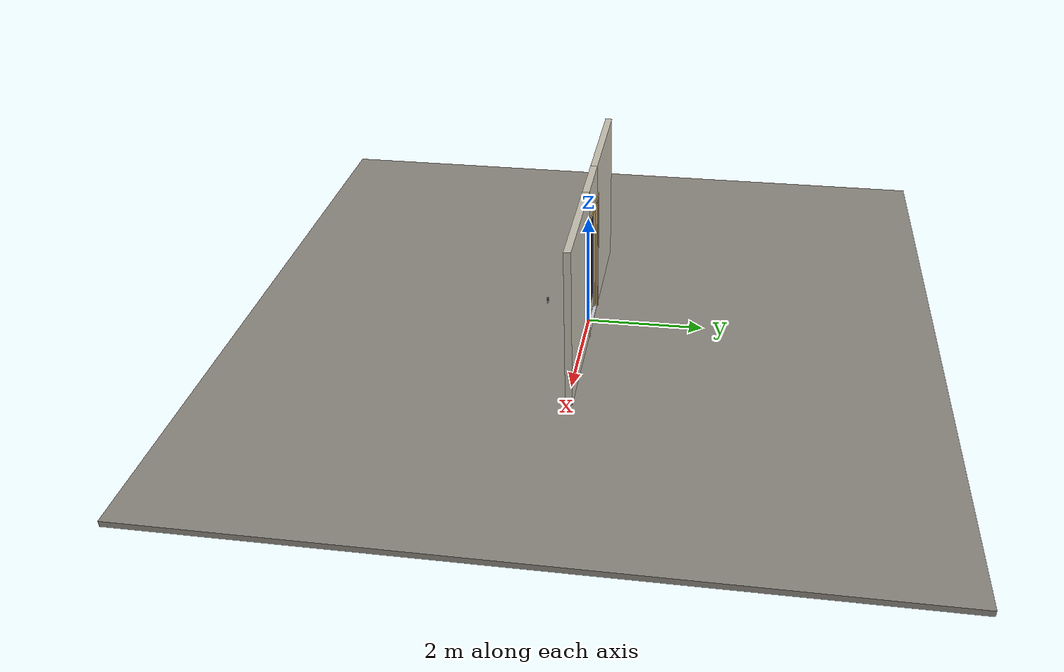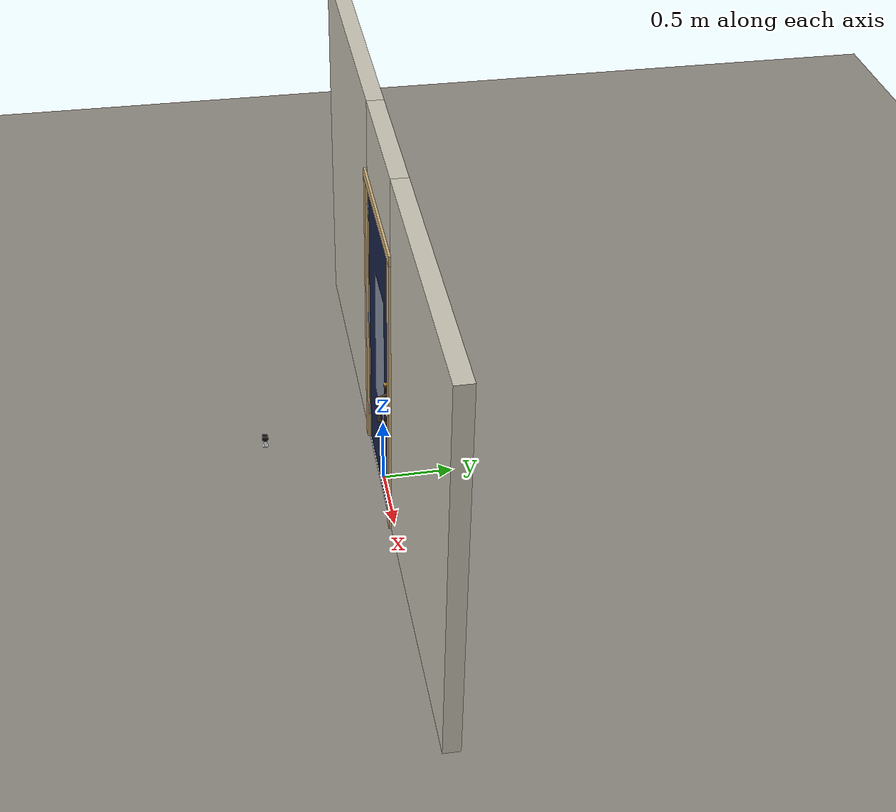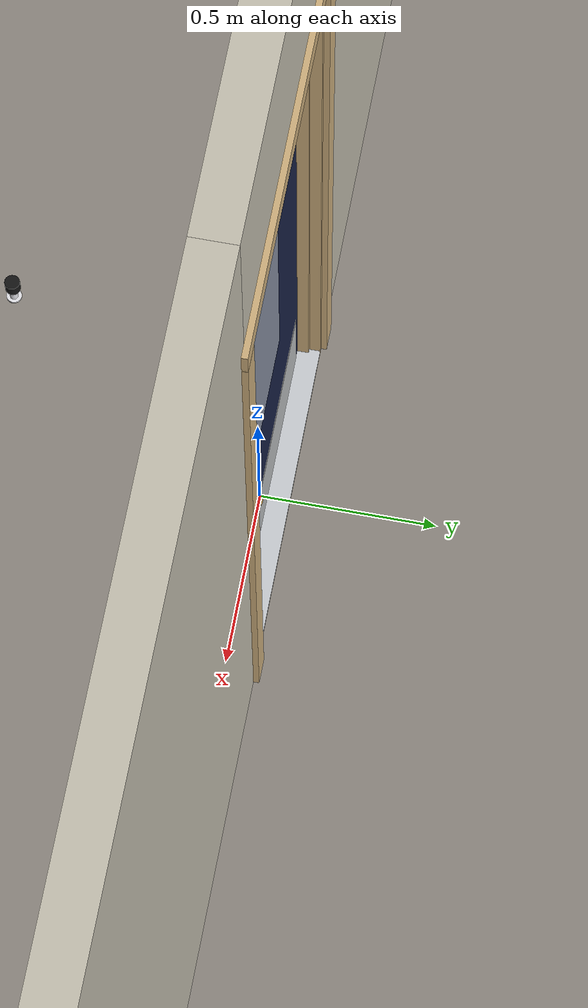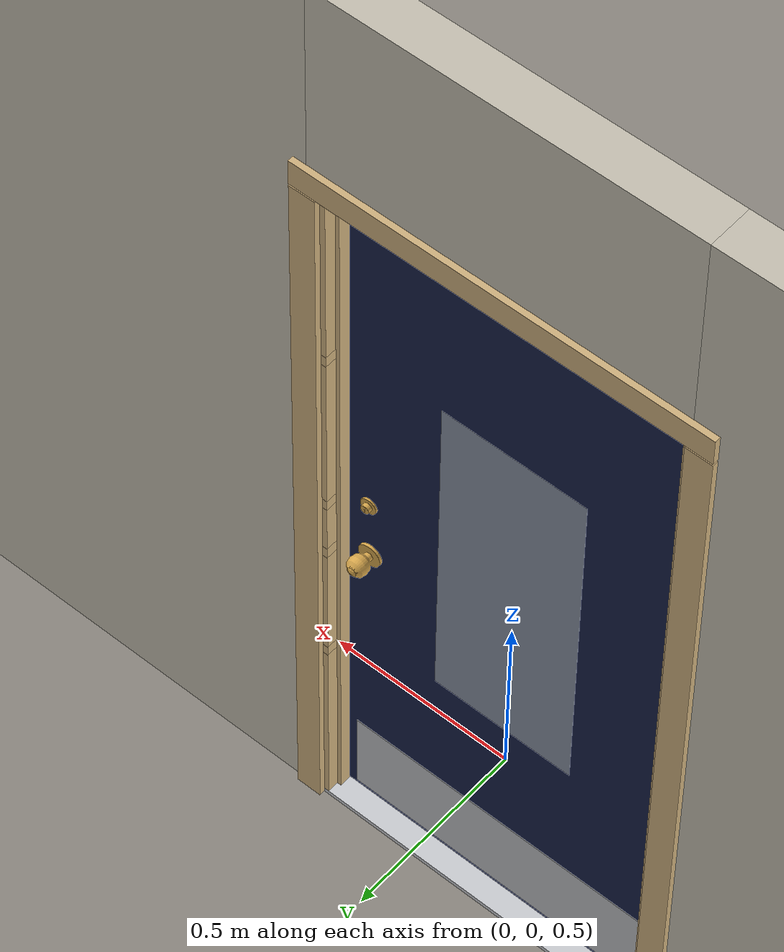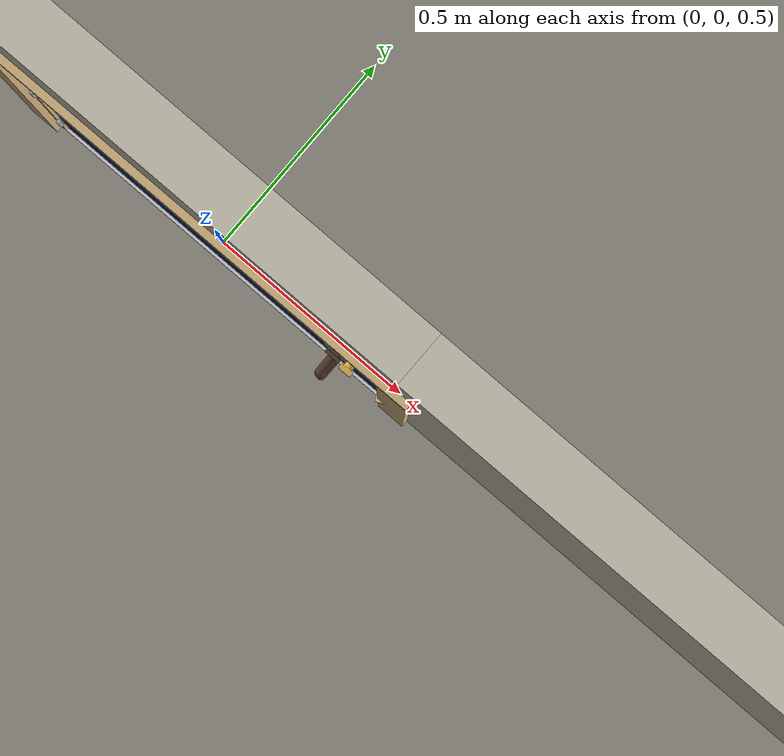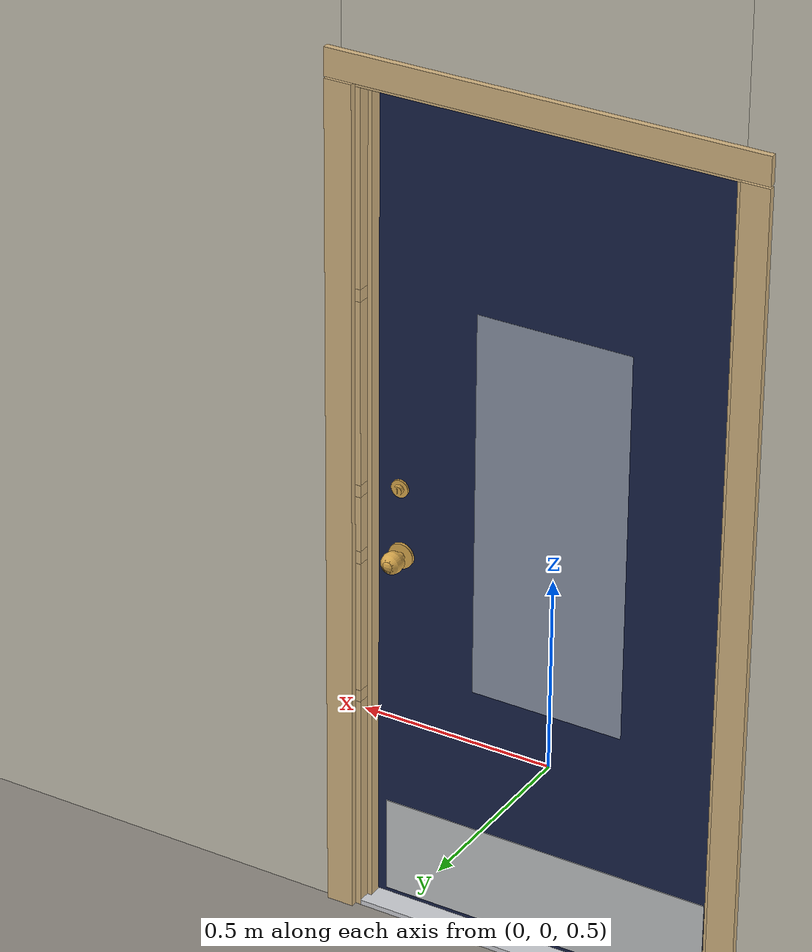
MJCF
<?xml version="1.0" ?>
<mujoco model="db0610_swing_single_full">
  <compiler angle="radian" meshdir="../../hardware" texturedir="../../textures" autolimits="true" inertiafromgeom="false"/>
  <option timestep="0.002" integrator="implicitfast" cone="elliptic" impratio="10" noslip_iterations="3">
    <flag multiccd="enable"/>
  </option>
  <size memory="16M"/>
  <default>
    <geom condim="4" solref="0.005 1" solimp="0.95 0.99 0.001"/>
    <joint solreflimit="0.005 1" solimplimit="0.95 0.99 0.001"/>
    <tendon solreflimit="0.005 1"/>
    <equality solref="0.002 1"/>
  </default>
  <visual>
    <headlight ambient="0.4 0.4 0.4" diffuse="0.7 0.7 0.7" specular="0.2 0.2 0.2"/>
    <quality shadowsize="4096"/>
    <map znear="0.01" zfar="60"/>
  </visual>
  <asset>
    <mesh name="cyl_face_e9e5036966" file="cyl_face_e9e5036966.obj"/>
    <mesh name="handleset_beb5526ad2" file="handleset_beb5526ad2.obj"/>
    <mesh name="hinge_2af0f4d6ca" file="hinge_2af0f4d6ca.obj"/>
    <mesh name="hinge_jamb_c0c0a62ada" file="hinge_jamb_c0c0a62ada.obj"/>
    <mesh name="knob_d1888f6f03" file="knob_d1888f6f03.obj"/>
    <mesh name="thumbturn_eb5c9899a3" file="thumbturn_eb5c9899a3.obj"/>
    <material name="mat_floor" rgba="0.55 0.53 0.5 1" specular="0.2" shininess="0.15" reflectance="0"/>
    <material name="mat_wall" rgba="0.78 0.76 0.7 1" specular="0.2" shininess="0.1" reflectance="0"/>
    <material name="mat_leaf" rgba="0.09 0.13 0.28 1" specular="0.2" shininess="0.34" reflectance="0"/>
    <material name="mat_glass" rgba="0.9 0.93 0.95 0.6" specular="0.2" shininess="0.5" reflectance="0.1"/>
    <material name="mat_hinge" rgba="0.65 0.66 0.68 1" specular="0.74" shininess="0.5" reflectance="0.36"/>
    <material name="mat_op_bronze" rgba="0.3 0.22 0.15 1" specular="0.74" shininess="0.5" reflectance="0.36"/>
    <material name="mat_op_brass" rgba="0.85 0.66 0.3 1" specular="0.8" shininess="0.75" reflectance="0.4"/>
    <material name="mat_trim" rgba="0.85 0.66 0.3 1" specular="0.8" shininess="0.75" reflectance="0.4"/>
    <material name="mat_bolt" rgba="0.85 0.66 0.3 1" specular="0.8" shininess="0.75" reflectance="0.4"/>
    <material name="mat_deadbolt" rgba="0.85 0.66 0.3 1" specular="0.8" shininess="0.75" reflectance="0.4"/>
    <material name="mat_frame" rgba="0.82 0.7 0.5 1" specular="0.2" shininess="0.45" reflectance="0"/>
    <material name="mat_threshold" rgba="0.8 0.81 0.83 1" specular="0.8" shininess="0.6" reflectance="0.4"/>
    <material name="mat_kick" rgba="0.75 0.76 0.77 1" specular="0.8" shininess="0.65" reflectance="0.4"/>
    <material name="mat_bumper_stop" rgba="0.08 0.08 0.08 1" specular="0.2" shininess="0.1" reflectance="0"/>
    <material name="mat_stop_base" rgba="0.9 0.9 0.92 1" specular="0.8" shininess="0.9" reflectance="0.4"/>
    <texture name="skybox" type="skybox" builtin="gradient" rgb1="0.6 0.7 0.85" rgb2="0.9 0.92 0.95" width="256" height="256"/>
  </asset>
  <worldbody>
    <light name="sun" pos="1.5 -2.5 4" dir="-0.3 0.5 -0.8" directional="true" diffuse="0.8 0.8 0.8" specular="0.3 0.3 0.3" castshadow="true"/>
    <light name="fill" pos="-1.5 2.5 3" dir="0.3 -0.5 -0.7" directional="true" diffuse="0.35 0.35 0.4" castshadow="false"/>
    <camera name="robot_view" pos="0 -2.609312 1.812087" xyaxes="1 0 0 0 0.26963 0.962964" fovy="52"/>
    <camera name="far_view" pos="0 2.666313 1.812087" xyaxes="-1 0 0 0 -0.26963 0.962964" fovy="52"/>
    <camera name="iso" pos="2.004737 -2.187262 2.234138" xyaxes="0.741536 0.670913 0 -0.242917 0.268487 0.932151" fovy="46"/>
    <camera name="detail_handle" pos="0.5315 -0.882 1.185" xyaxes="0.97561 0.219512 0 -0.070934 0.315262 0.94635" fovy="38"/>
    <geom name="floor" type="box" size="6 6 0.05" pos="0 0 -0.05" material="mat_floor" group="0" contype="1" conaffinity="1" friction="0.8 0.005 0.0001" density="2400"/>
    <geom name="wall_left" type="box" size="1.01025 0.0575 1.3735" pos="-1.48975 0.0285 1.3735" material="mat_wall" group="0" contype="1" conaffinity="1" friction="0.6 0.005 0.0001" density="800"/>
    <geom name="wall_right" type="box" size="0.99525 0.0575 1.3735" pos="1.50475 0.0285 1.3735" material="mat_wall" group="0" contype="1" conaffinity="1" friction="0.6 0.005 0.0001" density="800"/>
    <geom name="wall_header" type="box" size="0.4945 0.0575 0.2755" pos="0.015 0.0285 2.4715" material="mat_wall" group="0" contype="1" conaffinity="1" friction="0.6 0.005 0.0001" density="800"/>
    <geom name="hinge_0_jamb" type="mesh" mesh="hinge_jamb_c0c0a62ada" pos="-0.4575 -0.029 0.267" material="mat_hinge" group="1" contype="0" conaffinity="0" density="7850"/>
    <geom name="hinge_1_jamb" type="mesh" mesh="hinge_jamb_c0c0a62ada" pos="-0.4575 -0.029 1.08" material="mat_hinge" group="1" contype="0" conaffinity="0" density="7850"/>
    <geom name="hinge_2_jamb" type="mesh" mesh="hinge_jamb_c0c0a62ada" pos="-0.4575 -0.029 1.963" material="mat_hinge" group="1" contype="0" conaffinity="0" density="7850"/>
    <geom name="leaf_deadbolt_strike_b" type="box" size="0.0155 0.003 0.0005" pos="0.46 0 1.1215" quat="-0.5 -0.5 0.5 0.5" material="mat_deadbolt" group="1" contype="0" conaffinity="0" density="7800"/>
    <geom name="leaf_deadbolt_strike_l" type="box" size="0.003 0.0155 0.0005" pos="0.46 0.0125 1.14" quat="-0.5 -0.5 0.5 0.5" material="mat_deadbolt" group="1" contype="0" conaffinity="0" density="7800"/>
    <geom name="leaf_deadbolt_strike_t" type="box" size="0.0155 0.003 0.0005" pos="0.46 0 1.1585" quat="-0.5 -0.5 0.5 0.5" material="mat_deadbolt" group="1" contype="0" conaffinity="0" density="7800"/>
    <geom name="leaf_deadbolt_strike_r" type="box" size="0.003 0.0155 0.0005" pos="0.46 -0.0125 1.14" quat="-0.5 -0.5 0.5 0.5" material="mat_deadbolt" group="1" contype="0" conaffinity="0" density="7800"/>
    <geom name="leaf_multipoint_upper_strike_b" type="box" size="0.0155 0.003 0.0005" pos="0.46 0 1.6215" quat="-0.5 -0.5 0.5 0.5" material="mat_deadbolt" group="1" contype="0" conaffinity="0" density="7800"/>
    <geom name="leaf_multipoint_upper_strike_l" type="box" size="0.003 0.0155 0.0005" pos="0.46 0.0125 1.64" quat="-0.5 -0.5 0.5 0.5" material="mat_deadbolt" group="1" contype="0" conaffinity="0" density="7800"/>
    <geom name="leaf_multipoint_upper_strike_t" type="box" size="0.0155 0.003 0.0005" pos="0.46 0 1.6585" quat="-0.5 -0.5 0.5 0.5" material="mat_deadbolt" group="1" contype="0" conaffinity="0" density="7800"/>
    <geom name="leaf_multipoint_upper_strike_r" type="box" size="0.003 0.0155 0.0005" pos="0.46 -0.0125 1.64" quat="-0.5 -0.5 0.5 0.5" material="mat_deadbolt" group="1" contype="0" conaffinity="0" density="7800"/>
    <geom name="leaf_multipoint_lower_strike_b" type="box" size="0.0155 0.003 0.0005" pos="0.46 0 0.5715" quat="-0.5 -0.5 0.5 0.5" material="mat_deadbolt" group="1" contype="0" conaffinity="0" density="7800"/>
    <geom name="leaf_multipoint_lower_strike_l" type="box" size="0.003 0.0155 0.0005" pos="0.46 0.0125 0.59" quat="-0.5 -0.5 0.5 0.5" material="mat_deadbolt" group="1" contype="0" conaffinity="0" density="7800"/>
    <geom name="leaf_multipoint_lower_strike_t" type="box" size="0.0155 0.003 0.0005" pos="0.46 0 0.6085" quat="-0.5 -0.5 0.5 0.5" material="mat_deadbolt" group="1" contype="0" conaffinity="0" density="7800"/>
    <geom name="leaf_multipoint_lower_strike_r" type="box" size="0.003 0.0155 0.0005" pos="0.46 -0.0125 0.59" quat="-0.5 -0.5 0.5 0.5" material="mat_deadbolt" group="1" contype="0" conaffinity="0" density="7800"/>
    <geom name="jamb_hinge" type="box" size="0.0095 0.0575 1.0735" pos="-0.47 0.0285 1.0735" material="mat_frame" group="0" contype="1" conaffinity="1" friction="0.6 0.005 0.0001" density="400"/>
    <geom name="strike_590_wall_n" type="box" size="0.0245 0.03825 0.0155" pos="0.485 0.04775 0.59" material="mat_frame" group="0" contype="1" conaffinity="1" friction="0.6 0.005 0.0001" density="400"/>
    <geom name="strike_590_wall_p" type="box" size="0.0245 0.00975 0.0155" pos="0.485 -0.01925 0.59" material="mat_frame" group="0" contype="1" conaffinity="1" friction="0.6 0.005 0.0001" density="400"/>
    <geom name="strike_590_back" type="box" size="0.0125 0.0095 0.0155" pos="0.497 0 0.59" material="mat_frame" group="0" contype="1" conaffinity="1" friction="0.6 0.005 0.0001" density="400"/>
    <geom name="strike_965_wall_n" type="box" size="0.0245 0.039075 0.0167" pos="0.485 0.046925 0.965" material="mat_frame" group="0" contype="1" conaffinity="1" friction="0.6 0.005 0.0001" density="400"/>
    <geom name="strike_965_wall_p" type="box" size="0.0245 0.008 0.0167" pos="0.485 -0.01585 0.965" material="mat_frame" group="0" contype="1" conaffinity="1" friction="0.6 0.005 0.0001" density="400"/>
    <geom name="strike_965_ramp" type="box" size="0.0245 0.01649 0.0167" pos="0.489636 -0.028673 0.965" quat="0.977148 0 0 0.212558" material="mat_frame" group="0" contype="1" conaffinity="1" friction="0.12 0.005 0.0001" density="400"/>
    <geom name="strike_965_back" type="box" size="0.01615 0.00785 0.0167" pos="0.49335 0 0.965" material="mat_frame" group="0" contype="1" conaffinity="1" friction="0.6 0.005 0.0001" density="400"/>
    <geom name="strike_1140_wall_n" type="box" size="0.0245 0.03825 0.0155" pos="0.485 0.04775 1.14" material="mat_frame" group="0" contype="1" conaffinity="1" friction="0.6 0.005 0.0001" density="400"/>
    <geom name="strike_1140_wall_p" type="box" size="0.0245 0.00975 0.0155" pos="0.485 -0.01925 1.14" material="mat_frame" group="0" contype="1" conaffinity="1" friction="0.6 0.005 0.0001" density="400"/>
    <geom name="strike_1140_back" type="box" size="0.0125 0.0095 0.0155" pos="0.497 0 1.14" material="mat_frame" group="0" contype="1" conaffinity="1" friction="0.6 0.005 0.0001" density="400"/>
    <geom name="strike_1640_wall_n" type="box" size="0.0245 0.03825 0.0155" pos="0.485 0.04775 1.64" material="mat_frame" group="0" contype="1" conaffinity="1" friction="0.6 0.005 0.0001" density="400"/>
    <geom name="strike_1640_wall_p" type="box" size="0.0245 0.00975 0.0155" pos="0.485 -0.01925 1.64" material="mat_frame" group="0" contype="1" conaffinity="1" friction="0.6 0.005 0.0001" density="400"/>
    <geom name="strike_1640_back" type="box" size="0.0125 0.0095 0.0155" pos="0.497 0 1.64" material="mat_frame" group="0" contype="1" conaffinity="1" friction="0.6 0.005 0.0001" density="400"/>
    <geom name="jamb_strike_0" type="box" size="0.0245 0.0575 0.28725" pos="0.485 0.0285 0.28725" material="mat_frame" group="0" contype="1" conaffinity="1" friction="0.6 0.005 0.0001" density="400"/>
    <geom name="jamb_strike_1" type="box" size="0.0245 0.0575 0.1714" pos="0.485 0.0285 0.7769" material="mat_frame" group="0" contype="1" conaffinity="1" friction="0.6 0.005 0.0001" density="400"/>
    <geom name="jamb_strike_2" type="box" size="0.0245 0.0575 0.0714" pos="0.485 0.0285 1.0531" material="mat_frame" group="0" contype="1" conaffinity="1" friction="0.6 0.005 0.0001" density="400"/>
    <geom name="jamb_strike_3" type="box" size="0.0245 0.0575 0.2345" pos="0.485 0.0285 1.39" material="mat_frame" group="0" contype="1" conaffinity="1" friction="0.6 0.005 0.0001" density="400"/>
    <geom name="jamb_strike_4" type="box" size="0.0245 0.0575 0.24575" pos="0.485 0.0285 1.90125" material="mat_frame" group="0" contype="1" conaffinity="1" friction="0.6 0.005 0.0001" density="400"/>
    <geom name="jamb_head" type="box" size="0.4945 0.0575 0.0095" pos="0.015 0.0285 2.1565" material="mat_frame" group="0" contype="1" conaffinity="1" friction="0.6 0.005 0.0001" density="400"/>
    <geom name="head_stud" type="box" size="0.4945 0.0575 0.015" pos="0.015 0.0285 2.181" material="mat_wall" group="0" contype="1" conaffinity="1" friction="0.6 0.005 0.0001" density="500"/>
    <geom name="stop_hinge" type="box" size="0.0055 0.016 1.0735" pos="-0.455 0.0385 1.0735" material="mat_frame" group="0" contype="1" conaffinity="1" friction="0.6 0.005 0.0001" density="400"/>
    <geom name="stop_strike" type="box" size="0.0055 0.016 1.0735" pos="0.455 0.0385 1.0735" material="mat_frame" group="0" contype="1" conaffinity="1" friction="0.6 0.005 0.0001" density="400"/>
    <geom name="stop_head" type="box" size="0.4605 0.016 0.0055" pos="0 0.0385 2.1415" material="mat_frame" group="0" contype="1" conaffinity="1" friction="0.6 0.005 0.0001" density="400"/>
    <geom name="casing_l_n" type="box" size="0.035 0.008 1.083" pos="-0.5095 -0.037 1.0735" material="mat_frame" group="2" contype="0" conaffinity="0" density="400"/>
    <geom name="casing_r_n" type="box" size="0.035 0.008 1.083" pos="0.5095 -0.037 1.0735" material="mat_frame" group="2" contype="0" conaffinity="0" density="400"/>
    <geom name="casing_h_n" type="box" size="0.5445 0.008 0.035" pos="0 -0.037 2.196" material="mat_frame" group="2" contype="0" conaffinity="0" density="400"/>
    <geom name="casing_l_p" type="box" size="0.035 0.008 1.083" pos="-0.5095 0.094 1.0735" material="mat_frame" group="2" contype="0" conaffinity="0" density="400"/>
    <geom name="casing_r_p" type="box" size="0.035 0.008 1.083" pos="0.5095 0.094 1.0735" material="mat_frame" group="2" contype="0" conaffinity="0" density="400"/>
    <geom name="casing_h_p" type="box" size="0.5445 0.008 0.035" pos="0 0.094 2.196" material="mat_frame" group="2" contype="0" conaffinity="0" density="400"/>
    <geom name="threshold" type="box" size="0.4795 0.0575 0.0065" pos="0 0.0285 0.0065" material="mat_threshold" group="0" contype="1" conaffinity="1" friction="0.5 0.005 0.0001" density="2700"/>
    <geom name="door_stop_base" type="cylinder" size="0.022 0.003" pos="-0.4735 -0.8059 0.003" material="mat_stop_base" group="0" contype="1" conaffinity="1" friction="0.6 0.005 0.0001" density="7850"/>
    <geom name="door_stop_post" type="cylinder" size="0.012 0.0255" pos="-0.4735 -0.8059 0.0315" material="mat_stop_base" group="0" contype="1" conaffinity="1" friction="0.6 0.005 0.0001" density="7850"/>
    <geom name="door_stop_bumper" type="cylinder" size="0.022 0.02" pos="-0.4735 -0.8059 0.077" material="mat_bumper_stop" group="0" contype="1" conaffinity="1" friction="0.6 0.005 0.0001" density="1100"/>
    <site name="approach_point" pos="0 -1.5 0" quat="1 0 0 0" size="0.05" rgba="0.2 0.9 0.2 0.5" group="4"/>
    <site name="goal_point" pos="0 1.5 0" quat="1 0 0 0" size="0.05" rgba="0.2 0.9 0.2 0.5" group="4"/>
    <site name="door_plane_center" pos="0 0 1.0735" quat="1 0 0 0" size="0.02" rgba="0.2 0.9 0.2 0.5" group="4"/>
    <body name="leaf" pos="-0.4605 0 0">
      <inertial pos="0.472666 0.000282 0.979205" mass="32.373317" quat="0.498037 0.503664 0.498568 -0.499712" diaginertia="2.442576657 13.066637088 15.489293405"/>
      <joint name="leaf_hinge" type="hinge" axis="0 0 -1" pos="0.003 -0.029 0" limited="true" range="0 1.570796" damping="2.268966" frictionloss="1.602525" stiffness="6.6" springref="-0.409091" armature="0.02"/>
      <geom name="leaf_slab" type="box" size="0.457 0.022 1.063" pos="0.46 0 1.08" material="mat_leaf" group="0" contype="1" conaffinity="1" friction="0.4 0.005 0.0001" density="1"/>
      <geom name="leaf_glass_0" type="box" size="0.196053 0.0228 0.491106" pos="0.46 0 1.145906" material="mat_glass" group="1" contype="0" conaffinity="0" density="1"/>
      <geom name="hinge_0" type="mesh" mesh="hinge_2af0f4d6ca" pos="0.003 -0.029 0.267" material="mat_hinge" group="1" contype="0" conaffinity="0" density="7850"/>
      <geom name="hinge_1" type="mesh" mesh="hinge_2af0f4d6ca" pos="0.003 -0.029 1.08" material="mat_hinge" group="1" contype="0" conaffinity="0" density="7850"/>
      <geom name="hinge_2" type="mesh" mesh="hinge_2af0f4d6ca" pos="0.003 -0.029 1.963" material="mat_hinge" group="1" contype="0" conaffinity="0" density="7850"/>
      <geom name="leaf_handleset_n" type="mesh" mesh="handleset_beb5526ad2" pos="0.812 -0.022 0.905" quat="0.707107 0.707107 0 0" material="mat_op_bronze" group="1" contype="0" conaffinity="0" density="3000"/>
      <geom name="leaf_handleset_col_n" type="capsule" size="0.011 0.09" pos="0.812 -0.082 0.905" material="mat_op_bronze" group="3" contype="1" conaffinity="1" rgba="0.8 0.3 0.3 0.25" friction="0.7 0.01 0.0001" density="3000"/>
      <geom name="leaf_latch_bolt_faceplate" type="box" size="0.0006 0.01235 0.0267" pos="0.9164 0 0.965" material="mat_bolt" group="1" contype="0" conaffinity="0" density="8500"/>
      <geom name="leaf_deadbolt_faceplate" type="box" size="0.0006 0.014 0.0245" pos="0.9164 0 1.14" material="mat_deadbolt" group="1" contype="0" conaffinity="0" density="8500"/>
      <geom name="leaf_deadbolt_cylinder_face" type="mesh" mesh="cyl_face_e9e5036966" pos="0.852 0.022 1.14" quat="-0.707107 0.707107 0 0" material="mat_deadbolt" group="1" contype="0" conaffinity="0" density="7100"/>
      <geom name="leaf_multipoint_upper_faceplate" type="box" size="0.0006 0.014 0.0245" pos="0.9164 0 1.64" material="mat_deadbolt" group="1" contype="0" conaffinity="0" density="8500"/>
      <geom name="leaf_multipoint_lower_faceplate" type="box" size="0.0006 0.014 0.0245" pos="0.9164 0 0.59" material="mat_deadbolt" group="1" contype="0" conaffinity="0" density="8500"/>
      <geom name="leaf_multipoint_strip" type="box" size="0.0004 0.01 1.043" pos="0.9166 0 1.08" material="mat_deadbolt" group="1" contype="0" conaffinity="0" density="8500"/>
      <geom name="kick_plate_p" type="box" size="0.427 0.0008 0.125" pos="0.46 0.0228 0.152" material="mat_kick" group="2" contype="0" conaffinity="0" density="7900"/>
      <site name="leaf_handleset_grip_n" pos="0.812 -0.082 0.905" quat="1 0 0 0" size="0.012" rgba="0.2 0.9 0.2 0.5" group="4"/>
      <site name="leaf_edge_mid" pos="0.917 0 1.063" quat="1 0 0 0" size="0.02" rgba="0.2 0.9 0.2 0.5" group="4"/>
      <body name="leaf_handle" pos="0.847 0 0.965">
        <inertial pos="0 0.052948 0" mass="0.60261" quat="0.5 0.5 0.5 0.5" diaginertia="0.000156736 0.000451151 0.000451151"/>
        <joint name="leaf_handle_hinge" type="hinge" axis="0 -1 0" limited="true" range="0 0.87" damping="0.142525" frictionloss="0.038" stiffness="0.5" springref="-0.5" armature="0.01"/>
        <geom name="leaf_handle_spindle" type="cylinder" size="0.006 0.03" pos="0 0 0" quat="0.707107 -0.707107 0 0" material="mat_op_brass" group="1" contype="0" conaffinity="0" density="7850"/>
        <geom name="leaf_handle_knob_p" type="mesh" mesh="knob_d1888f6f03" pos="0 0.022 0" quat="-0.707107 0.707107 0 0" material="mat_op_brass" group="1" contype="0" conaffinity="0" density="3000"/>
        <geom name="leaf_handle_knob_col_p" type="sphere" size="0.0243" pos="0 0.0685 0" material="mat_op_brass" group="0" contype="1" conaffinity="1" friction="0.9 0.01 0.0001" density="3000"/>
        <geom name="leaf_handle_knob_neck_p" type="cylinder" size="0.011 0.012" pos="0 0.034 0" quat="0.707107 -0.707107 0 0" material="mat_op_brass" group="3" contype="1" conaffinity="1" rgba="0.8 0.3 0.3 0.25" friction="0.6 0.005 0.0001" density="3000"/>
        <site name="leaf_handle_grip_p" pos="0 0.0685 0" quat="1 0 0 0" size="0.012" rgba="0.2 0.9 0.2 0.5" group="4"/>
      </body>
      <body name="leaf_thumbpiece" pos="0.812 -0.04 1.077">
        <inertial pos="0 0.004 0" mass="0.05184" quat="-0.5 0.5 0.5 0.5" diaginertia="0.000006981 0.000007488 0.000009124"/>
        <joint name="leaf_thumbpiece_hinge" type="hinge" axis="-1 0 0" pos="0 0 0.02" limited="true" range="0 0.35" damping="0.219407" frictionloss="0.058" stiffness="1.2" springref="-0.416667" armature="0.01"/>
        <geom name="leaf_thumbpiece_geom" type="box" size="0.018 0.004 0.02" pos="0 0 0" material="mat_op_bronze" group="0" contype="1" conaffinity="1" friction="0.6 0.005 0.0001" density="3000"/>
        <geom name="leaf_thumbpiece_boss" type="box" size="0.01 0.012 0.006" pos="0 0.012 0" material="mat_op_bronze" group="1" contype="0" conaffinity="0" density="3000"/>
        <site name="leaf_thumb_push" pos="0 -0.005 0.01" quat="1 0 0 0" size="0.01" rgba="0.2 0.9 0.2 0.5" group="4"/>
      </body>
      <body name="leaf_latch_bolt" pos="0.917 0 0.965">
        <inertial pos="-0.00865 0 0" mass="0.041419" quat="0.92388 -0.382683 0 0" diaginertia="0.000000798 0.000005598 0.000005598"/>
        <joint name="leaf_latch_bolt_slide" type="slide" axis="-1 0 0" limited="true" range="0 0.0127" damping="2" frictionloss="0.3" stiffness="300" springref="-0.008333" armature="0.1"/>
        <geom name="leaf_latch_bolt_capsule" type="capsule" size="0.00635 0.015" pos="-0.00865 0 0" quat="0.707107 0 0.707107 0" material="mat_bolt" group="0" contype="1" conaffinity="1" friction="0.2 0.005 0.0001" density="8500"/>
      </body>
      <body name="leaf_deadbolt" pos="0.917 0 1.14">
        <inertial pos="-0.025 0 0" mass="0.17" quat="0 0 0.707107 0.707107" diaginertia="0.000012481 0.000039043 0.000044271"/>
        <joint name="leaf_deadbolt_slide" type="slide" axis="-1 0 0" limited="true" range="0 0.02" damping="5" frictionloss="1.5" armature="0.1" ref="0.02"/>
        <geom name="leaf_deadbolt_box" type="box" size="0.025 0.008 0.0125" pos="-0.025 0 0" material="mat_deadbolt" group="0" contype="1" conaffinity="1" friction="0.3 0.005 0.0001" density="8500"/>
      </body>
      <body name="leaf_deadbolt_thumbturn" pos="0.852 -0.022 1.14">
        <inertial pos="0 -0.012928 0" mass="0.178946" quat="0.000001 0.707107 -0.707107 -0.000001" diaginertia="0.000026045 0.000026215 0.000032438"/>
        <joint name="leaf_deadbolt_thumbturn_hinge" type="hinge" axis="0 1 0" limited="true" range="0 1.5708" damping="0.05" frictionloss="0.3" armature="0.005" ref="1.5708"/>
        <geom name="leaf_deadbolt_thumbturn_mesh" type="mesh" mesh="thumbturn_eb5c9899a3" pos="0 0 0" quat="0.499999 0.499999 0.500001 -0.500001" material="mat_deadbolt" group="0" contype="1" conaffinity="1" friction="0.6 0.005 0.0001" density="7100"/>
        <geom name="leaf_deadbolt_thumbturn_col" type="box" size="0.006 0.012 0.016" pos="0 -0.02 0" quat="0.707105 0 0.707108 0" material="mat_deadbolt" group="3" contype="1" conaffinity="1" rgba="0.8 0.3 0.3 0.25" friction="0.6 0.005 0.0001" density="7100"/>
      </body>
      <body name="leaf_multipoint_upper" pos="0.917 0 1.64">
        <inertial pos="-0.025 0 0" mass="0.17" quat="0 0 0.707107 0.707107" diaginertia="0.000012481 0.000039043 0.000044271"/>
        <joint name="leaf_multipoint_upper_slide" type="slide" axis="-1 0 0" limited="true" range="0 0.02" damping="5" frictionloss="1.5" armature="0.1" ref="0.02"/>
        <geom name="leaf_multipoint_upper_box" type="box" size="0.025 0.008 0.0125" pos="-0.025 0 0" material="mat_deadbolt" group="0" contype="1" conaffinity="1" friction="0.3 0.005 0.0001" density="8500"/>
      </body>
      <body name="leaf_multipoint_lower" pos="0.917 0 0.59">
        <inertial pos="-0.025 0 0" mass="0.17" quat="0 0 0.707107 0.707107" diaginertia="0.000012481 0.000039043 0.000044271"/>
        <joint name="leaf_multipoint_lower_slide" type="slide" axis="-1 0 0" limited="true" range="0 0.02" damping="5" frictionloss="1.5" armature="0.1" ref="0.02"/>
        <geom name="leaf_multipoint_lower_box" type="box" size="0.025 0.008 0.0125" pos="-0.025 0 0" material="mat_deadbolt" group="0" contype="1" conaffinity="1" friction="0.3 0.005 0.0001" density="8500"/>
      </body>
    </body>
  </worldbody>
  <tendon>
    <fixed name="leaf_thumb_coupling" limited="true" range="0 10">
      <joint joint="leaf_latch_bolt_slide" coef="1"/>
      <joint joint="leaf_thumbpiece_hinge" coef="-0.039688"/>
    </fixed>
    <fixed name="leaf_latch_bolt_coupling" limited="true" range="0 10">
      <joint joint="leaf_latch_bolt_slide" coef="1"/>
      <joint joint="leaf_handle_hinge" coef="-0.015679"/>
    </fixed>
  </tendon>
  <equality>
    <joint name="leaf_deadbolt_couple" joint1="leaf_deadbolt_slide" joint2="leaf_deadbolt_thumbturn_hinge" polycoef="0 0.012732 0 0 0" active="true"/>
    <joint name="leaf_multipoint_upper_couple" joint1="leaf_multipoint_upper_slide" joint2="leaf_deadbolt_slide" polycoef="0 1 0 0 0" active="true"/>
    <joint name="leaf_multipoint_lower_couple" joint1="leaf_multipoint_lower_slide" joint2="leaf_deadbolt_slide" polycoef="0 1 0 0 0" active="true"/>
  </equality>
  <contact>
    <exclude body1="leaf_deadbolt" body2="leaf_deadbolt_thumbturn"/>
  </contact>
  <sensor>
    <jointpos name="leaf_hinge_pos" joint="leaf_hinge"/>
    <jointvel name="leaf_hinge_vel" joint="leaf_hinge"/>
    <jointpos name="leaf_handle_hinge_pos" joint="leaf_handle_hinge"/>
    <jointvel name="leaf_handle_hinge_vel" joint="leaf_handle_hinge"/>
    <jointpos name="leaf_thumbpiece_hinge_pos" joint="leaf_thumbpiece_hinge"/>
    <jointvel name="leaf_thumbpiece_hinge_vel" joint="leaf_thumbpiece_hinge"/>
    <jointpos name="leaf_latch_bolt_slide_pos" joint="leaf_latch_bolt_slide"/>
    <jointvel name="leaf_latch_bolt_slide_vel" joint="leaf_latch_bolt_slide"/>
    <jointpos name="leaf_deadbolt_slide_pos" joint="leaf_deadbolt_slide"/>
    <jointvel name="leaf_deadbolt_slide_vel" joint="leaf_deadbolt_slide"/>
    <jointpos name="leaf_deadbolt_thumbturn_hinge_pos" joint="leaf_deadbolt_thumbturn_hinge"/>
    <jointvel name="leaf_deadbolt_thumbturn_hinge_vel" joint="leaf_deadbolt_thumbturn_hinge"/>
    <jointpos name="leaf_multipoint_upper_slide_pos" joint="leaf_multipoint_upper_slide"/>
    <jointvel name="leaf_multipoint_upper_slide_vel" joint="leaf_multipoint_upper_slide"/>
    <jointpos name="leaf_multipoint_lower_slide_pos" joint="leaf_multipoint_lower_slide"/>
    <jointvel name="leaf_multipoint_lower_slide_vel" joint="leaf_multipoint_lower_slide"/>
  </sensor>
</mujoco>
